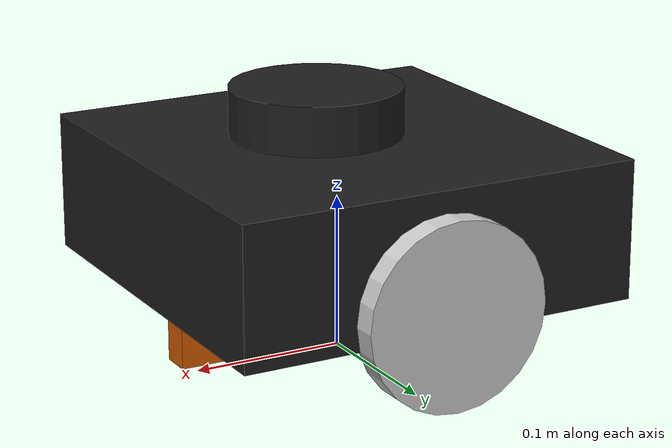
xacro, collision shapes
<?xml version="1.0" ?>
<robot name="pir_robot_frame" xmlns:xacro="http://ros.org/wiki/xacro">
  <xacro:include filename="$(find pir_description)/urdf/common_properties.xacro"/>
  <xacro:include filename="$(find pir_description)/urdf/pir_robot_frame.gazebo.xacro"/>

  <link name="base_footprint"/>

  <joint name="base_joint" type="fixed">
    <parent link="base_footprint"/>
    <child link="base_link" />
    <origin xyz="0 0 0.010" rpy="0 0 0"/>
  </joint>

  <link name="base_link">
    <visual>
      <origin xyz="0 0 0.03" rpy="0 0 0"/>
      <geometry>
        <!--box size="0.07 0.085 0.065"/-->
        <mesh filename="package://pir_description/meshes/base/pir_body.stl" scale="0.001 0.001 0.001"/>
      </geometry>
      <material name="light_black"/>
    </visual>

    <collision>
      <origin xyz="0.0 0 0.085" rpy="0 0 0"/>
      <geometry>
        <box size="0.266 0.266 0.090"/>
      </geometry>
    </collision>

    <inertial>
      <origin xyz="0 0 0.03" rpy="0 0 0"/>
      <mass value="1.3729096e+00"/>
      <inertia ixx="8.7002718e-03" ixy="-4.7576583e-05" ixz="1.1160499e-04"
               iyy="8.6195418e-03" iyz="-3.5422299e-06"
               izz="1.4612727e-02" />
    </inertial>
  </link>

  <joint name="wheel_left_joint" type="continuous">
    <parent link="base_link"/>
    <child link="wheel_left_link"/>
    <origin xyz="0.0 0.14 0.056" rpy="-1.57 0 0"/>
    <axis xyz="0 0 1"/>
  </joint>

  <link name="wheel_left_link">
    <visual>
      <origin xyz="0 0 0" rpy="1.57 0 0"/>
      <geometry>
        <!--box size="0.07 0.085 0.065"/-->
        <mesh filename="package://pir_description/meshes/wheels/left_tire.stl" scale="0.001 0.001 0.001"/>
      </geometry>
      <material name="dark"/>
    </visual>

    <collision>
      <origin xyz="0 0 0" rpy="0 0 0"/>
      <geometry>
        <cylinder length="0.018" radius="0.06"/>
      </geometry>
    </collision>

    <inertial>
      <origin xyz="0 0 0" />
      <mass value="2.8498940e-01" />
      <inertia ixx="1.1175580e-05" ixy="-4.2369783e-11" ixz="-5.9381719e-09"
               iyy="1.1192413e-05" iyz="-1.4400107e-11"
               izz="2.0712558e-05" />
      </inertial>
  </link>

  <joint name="wheel_right_joint" type="continuous">
    <parent link="base_link"/>
    <child link="wheel_right_link"/>
    <origin xyz="0.0 -0.14 0.056" rpy="1.57 3.14 3.14"/>
    <axis xyz="0 0 1"/>
  </joint>

  <link name="wheel_right_link">
    <visual>
      <origin xyz="0 0 0" rpy="1.57 3.14 0"/>
      <geometry>
        <!--box size="0.07 0.085 0.065"/-->
        <mesh filename="package://pir_description/meshes/wheels/right_tire.stl" scale="0.001 0.001 0.001"/>
      </geometry>
      <material name="dark"/>
    </visual>

    <collision>
      <origin xyz="0 0 0" rpy="0 0 0"/>
      <geometry>
        <cylinder length="0.018" radius="0.06"/>
      </geometry>
    </collision>

    <inertial>
      <origin xyz="0 0 0" />
      <mass value="2.8498940e-01" />
      <inertia ixx="1.1175580e-05" ixy="-4.2369783e-11" ixz="-5.9381719e-09"
               iyy="1.1192413e-05" iyz="-1.4400107e-11"
               izz="2.0712558e-05" />
      </inertial>
  </link>

  <joint name="caster_front_joint" type="fixed">
    <parent link="base_link"/>
    <child link="caster_front_link"/>
    <origin xyz="-0.1 0 0.03" rpy="-1.57 0 0"/>
  </joint>

  <link name="caster_front_link">
    <collision>
      <origin xyz="0 0.015 0" rpy="0 0 0"/>
      <geometry>
        <box size="0.030 0.035 0.020"/>
      </geometry>
    </collision>

    <inertial>
      <origin xyz="0 0 0" />
      <mass value="0.005" />
      <inertia ixx="0.001" ixy="0.0" ixz="0.0"
               iyy="0.001" iyz="0.0"
               izz="0.001" />
    </inertial>
  </link>

  <joint name="caster_rear_joint" type="fixed">
    <parent link="base_link"/>
    <child link="caster_rear_link"/>
    <origin xyz="0.1 0 0.03" rpy="-1.57 0 0"/>
  </joint>

  <link name="caster_rear_link">
    <collision>
      <origin xyz="0 0.015 0" rpy="0 0 0"/>
      <geometry>
        <box size="0.030 0.035 0.020"/>
      </geometry>
    </collision>

    <inertial>
      <origin xyz="0 0 0" />
      <mass value="0.005" />
      <inertia ixx="0.001" ixy="0.0" ixz="0.0"
               iyy="0.001" iyz="0.0"
               izz="0.001" />
    </inertial>
  </link>

  <joint name="imu_joint" type="fixed">
    <parent link="base_link"/>
    <child link="imu_link"/>
    <origin xyz="0.0 0 0.068" rpy="0 0 0"/>
  </joint>

  <link name="imu_link"/>

  <joint name="scan_joint" type="fixed">
    <parent link="base_link"/>
    <child link="base_scan"/>
    <origin xyz="0 0 0.156" rpy="0 0 0"/>
  </joint>

  <link name="base_scan">
    <visual>
      <origin xyz="0 0 0.0" rpy="0 0 0"/>
      <geometry>
        <!--box size="0.07 0.085 0.065"/-->
        <mesh filename="package://pir_description/meshes/sensors/lds.stl" scale="0.001 0.001 0.001"/>
      </geometry>
      <material name="dark"/>
    </visual>

    <collision>
      <origin xyz="0.015 0 -0.0065" rpy="0 0 0"/>
      <geometry>
        <cylinder length="0.0315" radius="0.055"/>
      </geometry>
    </collision>

    <inertial>
      <mass value="0.114" />
      <origin xyz="0 0 0" />
      <inertia ixx="0.001" ixy="0.0" ixz="0.0"
               iyy="0.001" iyz="0.0"
               izz="0.001" />
    </inertial>
  </link>

</robot>
